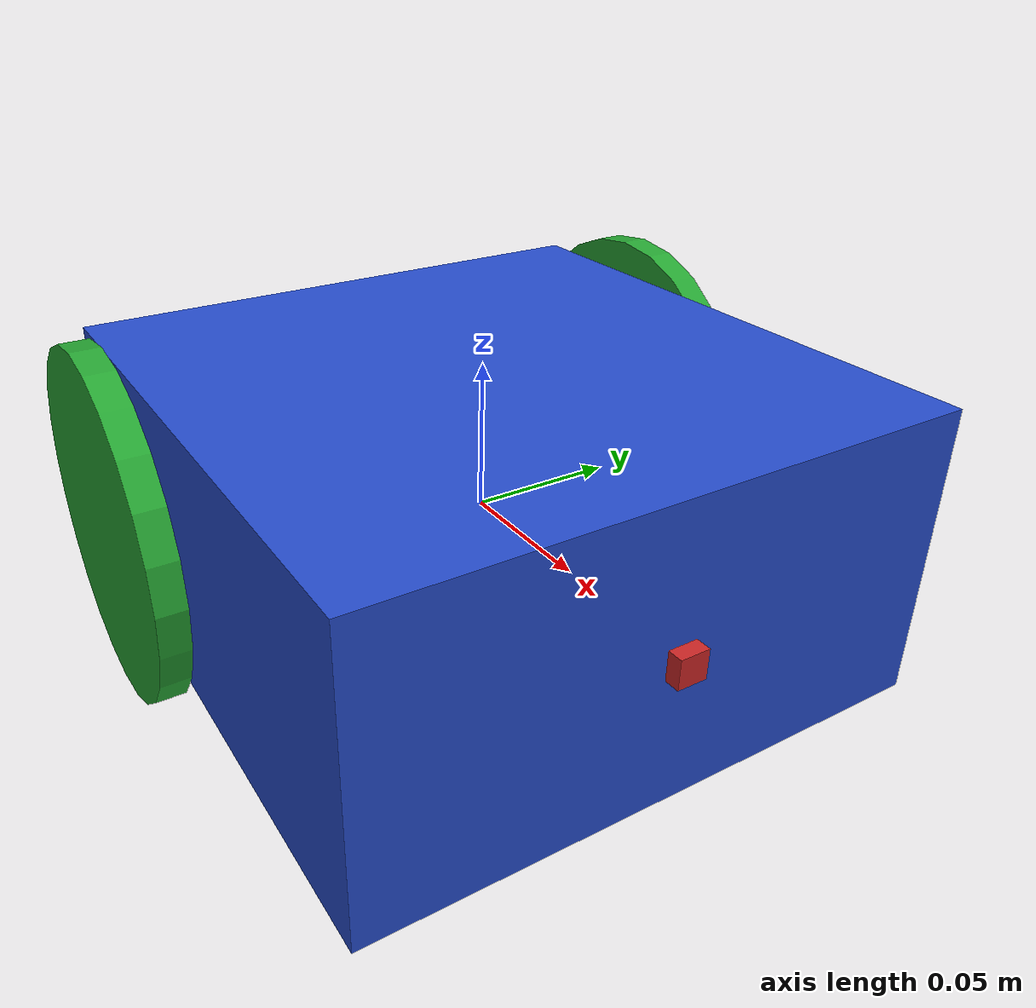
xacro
<?xml version='1.0'?>

<robot name="marsbot" xmlns:xacro="http://www.ros.org/wiki/xacro">

  <xacro:include filename="$(find bot_description)/urdf/marsbot.gazebo" />
  <xacro:include filename="lidar.xacro" />
  <link name="robot_footprint"></link>

  <joint name="robot_footprint_joint" type="fixed">
    <origin xyz="0 0 0" rpy="0 0 0" />
    <parent link="robot_footprint"/>
    <child link="base_link" />
  </joint>

  <link name='base_link'>
    <pose>0 0 0.1 0 0 0</pose>

    <inertial>
      <mass value="15.0"/>
      <origin xyz="0.0 0 0" rpy=" 0 0 0"/>
      <inertia
          ixx="0.1" ixy="0" ixz="0"
          iyy="0.1" iyz="0"
          izz="0.1"
      />
    </inertial>

    <collision name='collision'>
      <origin xyz="0 0 0" rpy=" 0 0 0"/>
      <geometry>
        <box size="0.2 0.2 0.1"/>
      </geometry>
    </collision>

    <visual name='base_link_visual'>
      <origin xyz="0 0 0" rpy=" 0 0 0"/>
      <geometry>
        <box size="0.2 0.2 0.1"/>
      </geometry>
    </visual>

	<!--caster wheel-->
    <collision name='front_caster_collision'>
      <origin xyz="0.039 0 -0.05" rpy=" 0 0 0"/>
      <geometry>
        <sphere radius="0.021"/>
      </geometry>
    </collision>

    <visual name='front_caster_visual'>
      <origin xyz="0.039 0 -0.05" rpy=" 0 0 0"/>
      <geometry>
        <sphere radius="0.021"/>
      </geometry>
    </visual>

  </link>
	<gazebo reference="base_link">
    <material>Gazebo/Blue</material>
  </gazebo>

  <!--Left wheel-->
  <link name="left_wheel">
  	<inertial>
      <mass value="5.0"/>
      <origin xyz="0.0 0 0" rpy=" 0 1.5707 1.5707"/>
      <inertia
          ixx="0.1" ixy="0" ixz="0"
          iyy="0.1" iyz="0"
          izz="0.1"
      />
    </inertial>

    <collision name='collision'>
      <origin xyz="0 0 0" rpy=" 0 1.5707 1.5707"/>
      <geometry>
        <cylinder radius="0.035" length="0.02"/>
      </geometry>
    </collision>

    <visual name='left_wheel_visual'>
      <origin xyz="-0.01 0. 0" rpy=" 0 1.5707 1.5707"/>
      <geometry>
        <cylinder radius="0.060" length="0.01"/>
      </geometry>
    </visual>

  </link>
	<gazebo reference="left_wheel">
    <material>Gazebo/Green</material>
  </gazebo>

  <!--Right wheel-->
  <link name="right_wheel">
  	<inertial>
      <mass value="5.0"/>
      <origin xyz="0.0 0 0" rpy=" 0 1.5707 -1.5707"/>
      <inertia
          ixx="0.1" ixy="0" ixz="0"
          iyy="0.1" iyz="0"
          izz="0.1"
      />
    </inertial>

    <collision name='collision'>
      <origin xyz="0 0 0" rpy=" 0 1.5707 -1.5707"/>
      <geometry>
        <cylinder radius="0.035" length="0.02"/>
      </geometry>
    </collision>

    <visual name='right_wheel_visual'>
      <origin xyz="0 0 0" rpy=" 0 1.5707 -1.5707"/>
      <geometry>
        <cylinder radius="0.060" length="0.01"/>
      </geometry>
    </visual>

  </link>
	<gazebo reference="right_wheel">
    <material>Gazebo/Green</material>
  </gazebo>

	<!--Joints-->

	<!--Left wheel Joint-->
  <joint type="continuous" name="left_wheel_hinge">
    <origin xyz="-0.05 0.11 0" rpy="0 0 0"/>
    <child link="left_wheel"/>
    <parent link="base_link"/>
    <axis xyz="0 1 0" rpy="0 0 0"/>
    <limit effort="10000" velocity="1000"/>
    <dynamics damping="1.0" friction="1.0"/>
  </joint>

  <!--Right wheel Joint-->
  <joint type="continuous" name="right_wheel_hinge">
    <origin xyz="-0.05 -0.11 0" rpy="0 0 0"/>
    <child link="right_wheel"/>
    <parent link="base_link"/>
    <axis xyz="0 1 0" rpy="0 0 0"/>
    <limit effort="10000" velocity="1000"/>
    <dynamics damping="1.0" friction="1.0"/>
  </joint>

	<!--Sensor Links-->

	<!--Camera Link-->
  <link name="camera">
  	<inertial>
      <mass value="0.1"/>
      <origin xyz="0.0 0 0" rpy=" 0 0 0"/>
      <inertia
          ixx="1e-6" ixy="0" ixz="0"
          iyy="1e-6" iyz="0"
          izz="1e-6"
      />
    </inertial>

    <collision name='collision'>
      <origin xyz="0 0 0" rpy=" 0 0 0"/>
      <geometry>
        <box size="0.01 0.01 0.01"/>
      </geometry>
    </collision>

    <visual name='camera_visual'>
      <origin xyz="0 0 0" rpy=" 0 0 0"/>
      <geometry>
        <box size="0.01 0.01 0.01"/>
      </geometry>
    </visual>

  </link>
	<gazebo reference="camera">
    <material>Gazebo/Red</material>
  </gazebo>

	<!--Sensor Joints-->
	<!--Camera Joint-->
	<joint type="fixed" name="camera_hinge">
    <origin xyz="0.1 0 0" rpy="0 0 0"/>
    <child link="camera"/>
    <parent link="base_link"/>
    <axis xyz="0 1 0" rpy="0 0 0"/>
    <limit effort="10000" velocity="1000"/>
    <dynamics damping="1.0" friction="1.0"/>
  </joint>

</robot>

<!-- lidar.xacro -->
<robot xmlns:xacro="http://www.ros.org/wiki/xacro" >

    <joint name="laser_joint" type="fixed">
        <parent link="base_link"/>
        <child link="laser_frame"/>
        <origin xyz="0.1 0 0.175" rpy="0 0.5 0"/>
    </joint>

    <link name="laser_frame">
       <link name="laser_frame">
    <visual>
        <geometry>
            <cylinder radius="0.05" length="0.04"/>
        </geometry>
        <material name="red"/>
    </visual>
    <collision>
        <geometry>
            <cylinder radius="0.05" length="0.04"/>
        </geometry>
    </collision>
</link>

<material name="red">
    <color rgba="1 0 0 1"/>
</material>
</link>

<gazebo reference="laser_frame">
    <material>Gazebo/Red</material>

    <sensor name="laser" type="ray">
    <pose> 0 0 0 0 0 0 </pose>
    <visualize>true</visualize>
    <update_rate>10</update_rate>
    <ray>
    <scan>
        <horizontal>
            <samples>360</samples>
            <min_angle>-3.14</min_angle>
            <max_angle>3.14</max_angle>
        </horizontal>
    </scan>
    <range>
        <min>0.3</min>
        <max>12</max>
    </range>

    </ray>
    <plugin name="laser_controller" filename="libgazebo_ros_ray_sensor.so">
        <ros>
        <argument>~/out:=scan</argument>
    </ros>
    <output_type>sensor_msgs/LaserScan</output_type>
    <frame_name>laser_frame</frame_name>
    </plugin>
</sensor>
</gazebo>
</robot>
